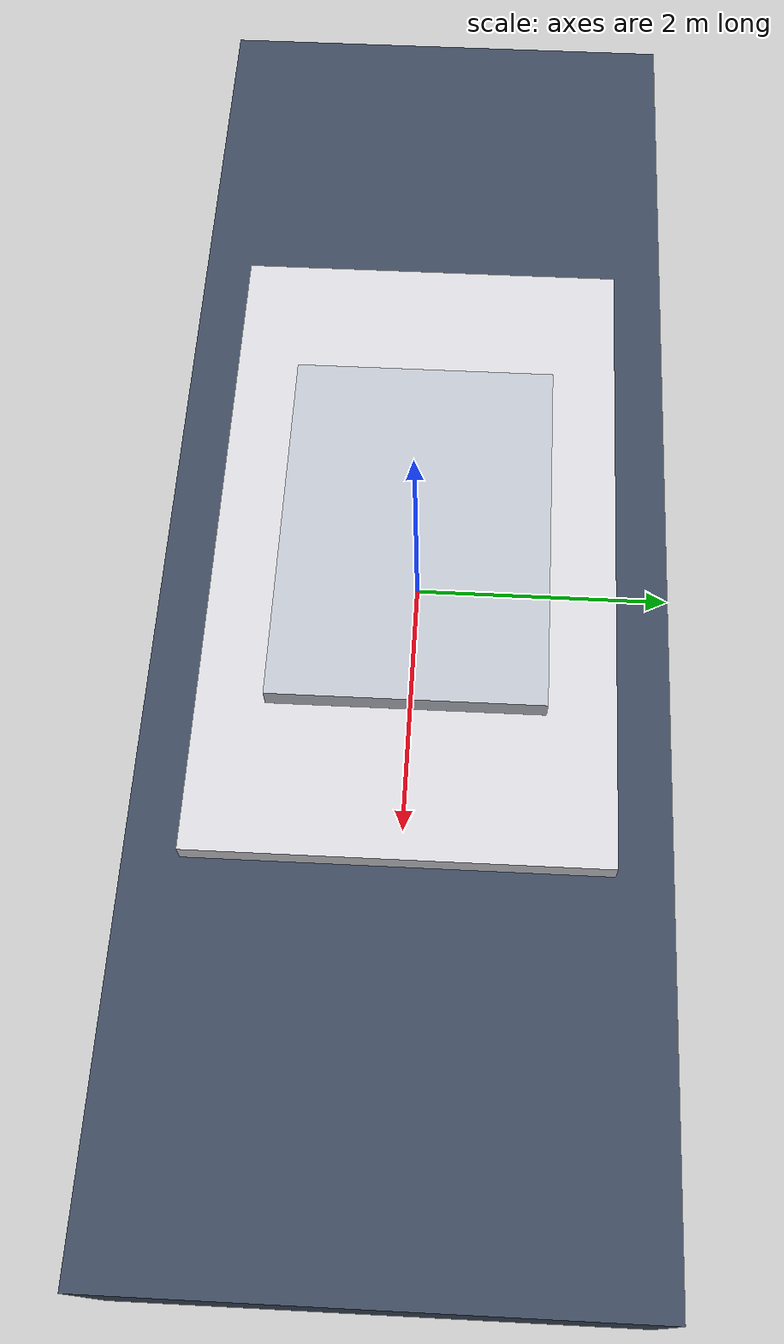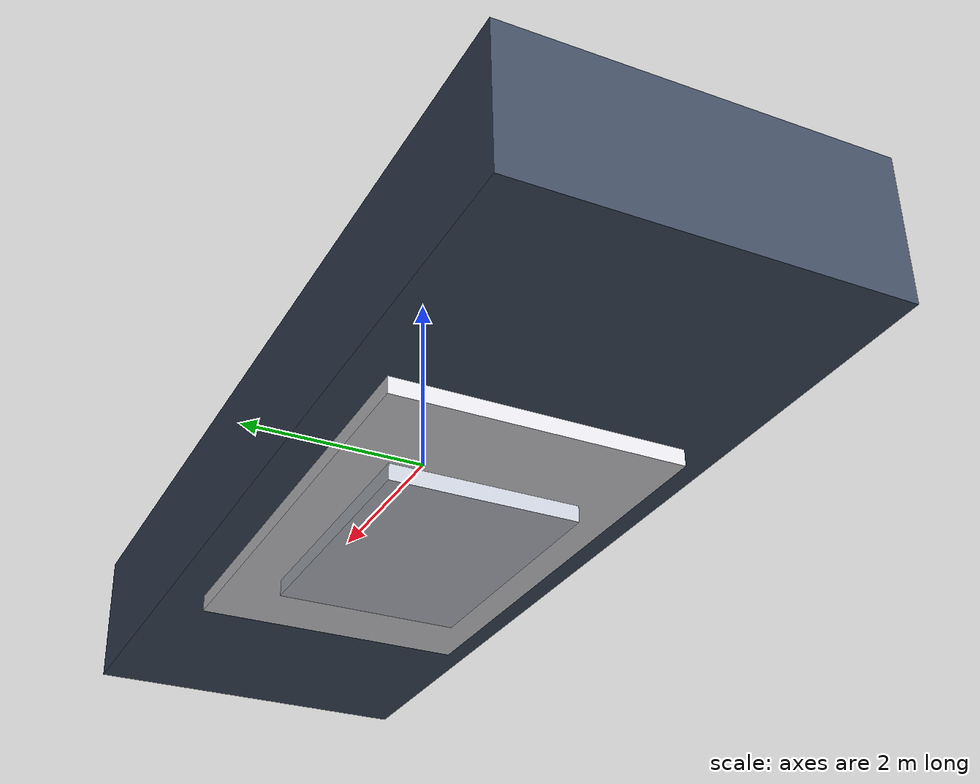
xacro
<?xml version="1.0"?>
<robot xmlns:xacro="http://www.ros.org/wiki/xacro" name="wamv">
  <xacro:arg name="namespace" default="wamv"/>
  <xacro:property name="namespace" value="$(arg namespace)" scope="global"/>

  <link name="${namespace}/base_link">
    <!-- ***** Visual: multi-box workboat ***** -->
    <visual name="hull">
      <pose>0 0 0.1 0 0 0</pose>
      <geometry><box size="10.5 3.8 1.5"/></geometry>
      <material name="hull_grey">
        <color rgba="0.25 0.30 0.38 1.0"/>
      </material>
    </visual>
    <visual name="deck">
      <pose>0.5 0 0.85 0 0 0</pose>
      <geometry><box size="7.5 3.5 0.15"/></geometry>
      <material name="deck_dark">
        <color rgba="0.35 0.35 0.35 1.0"/>
      </material>
    </visual>
    <visual name="deck_house">
      <pose>-1.0 0 1.85 0 0 0</pose>
      <geometry><box size="5.0 3.0 1.85"/></geometry>
      <material name="house_white">
        <color rgba="0.88 0.88 0.90 1.0"/>
      </material>
    </visual>
    <visual name="wheelhouse">
      <pose>-2.0 0 3.05 0 0 0</pose>
      <geometry><box size="2.8 2.0 2.2"/></geometry>
      <material name="wheelhouse_lt">
        <color rgba="0.78 0.80 0.84 1.0"/>
      </material>
    </visual>

    <!-- ***** Inertial: 2500 kg, box-approx 12x4x1.5m ***** -->
    <inertial>
      <mass value="2500.0"/>
      <inertia ixx="4000" ixy="0" ixz="0" iyy="31000" iyz="0" izz="34000"/>
    </inertial>
  </link>

  <gazebo reference="${namespace}/base_link">
    <enable_wind>true</enable_wind>
  </gazebo>

  <gazebo>
    <!-- Port-side buoyancy points -->
    <plugin filename="libSurface.so" name="vrx::Surface">
      <link_name>${namespace}/base_link</link_name>
      <hull_length>10.0</hull_length><hull_radius>0.60</hull_radius><fluid_level>0</fluid_level>
      <points><point>3.5 1.80 -0.5</point><point>-3.5 1.80 -0.5</point></points>
      <wavefield>
        <topic>/vrx/wavefield/parameters</topic>
        <wave><model>PMS</model><amplitude>0.5</amplitude><period>7.0</period><gain>0.7</gain><steepness>0.5</steepness><number>3</number><scale>1.3</scale><angle>0.3</angle><tau>0.001</tau></wave>
      </wavefield>
    </plugin>

    <!-- Starboard-side buoyancy points -->
    <plugin filename="libSurface.so" name="vrx::Surface">
      <link_name>${namespace}/base_link</link_name>
      <hull_length>10.0</hull_length><hull_radius>0.60</hull_radius><fluid_level>0</fluid_level>
      <points><point>3.5 -1.80 -0.5</point><point>-3.5 -1.80 -0.5</point></points>
      <wavefield>
        <topic>/vrx/wavefield/parameters</topic>
        <wave><model>PMS</model><amplitude>0.5</amplitude><period>7.0</period><gain>0.7</gain><steepness>0.5</steepness><number>3</number><scale>1.3</scale><angle>0.3</angle><tau>0.001</tau></wave>
      </wavefield>
    </plugin>
    <!-- Hydrodynamics + Wind plugins disabled for debugging -->
  </gazebo>
</robot>
